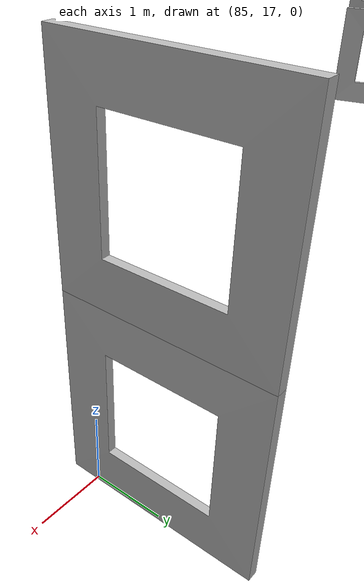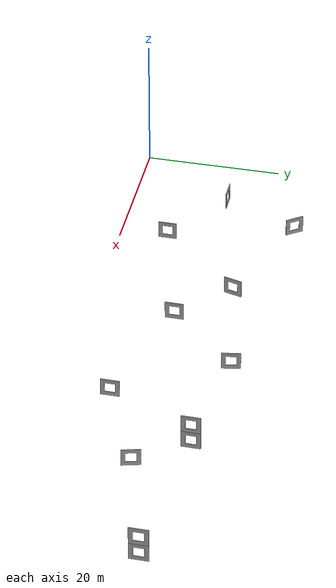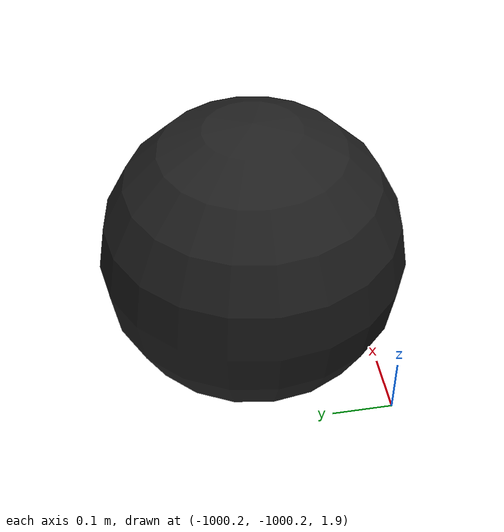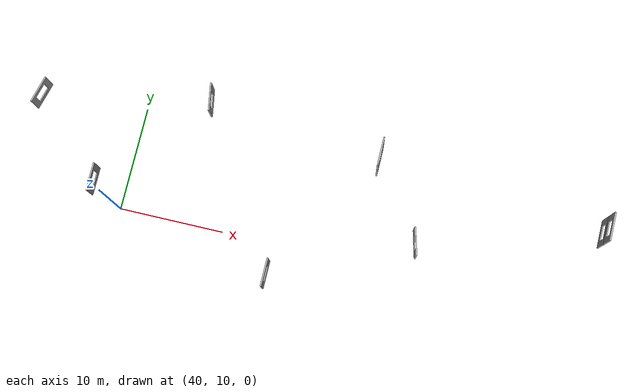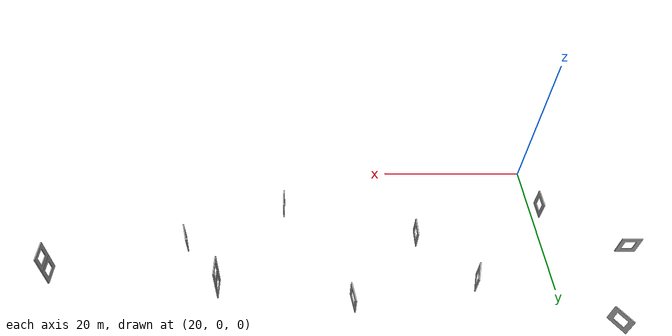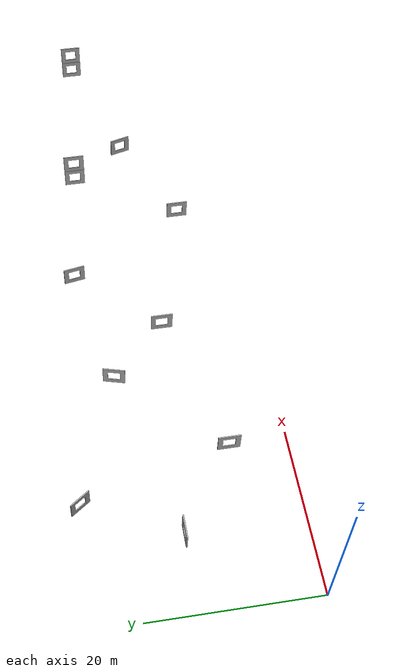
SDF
<sdf version="1.5">
 <world name="default">
  <plugin name="mrs_gazebo_static_transform_republisher_plugin" filename="libMrsGazeboCommonResources_StaticTransformRepublisher.so"/>
  <spherical_coordinates>
   <surface_model>EARTH_WGS84</surface_model>
   <latitude_deg>47.397743</latitude_deg>
   <longitude_deg>8.545594</longitude_deg>
   <elevation>0.0</elevation>
   <heading_deg>0</heading_deg>
  </spherical_coordinates>
  <physics name="default_physics" default="0" type="ode">
   <gravity>0 0 -9.8066</gravity>
   <ode>
    <solver>
     <type>quick</type>
     <iters>10</iters>
     <sor>1.3</sor>
     <use_dynamic_moi_rescaling>0</use_dynamic_moi_rescaling>
    </solver>
    <constraints>
     <cfm>0</cfm>
     <erp>0.2</erp>
     <contact_max_correcting_vel>250</contact_max_correcting_vel>
     <contact_surface_layer>0.004</contact_surface_layer>
    </constraints>
   </ode>
   <max_step_size>0.004</max_step_size>
   <real_time_factor>1</real_time_factor>
   <real_time_update_rate>250</real_time_update_rate>
   <magnetic_field>6.0e-06 2.3e-05 -4.2e-05</magnetic_field>
  </physics>
  <scene><shadows>false</shadows></scene>
  <light name="sun" type="directional">
   <pose>0 0 10 0.5 -0.4 0</pose>
   <diffuse>1 1 1 1</diffuse>
   <specular>0.6 0.6 0.6 1</specular>
   <direction>0.1 0.1 -0.9</direction>
   <attenuation>
    <range>20</range>
    <constant>0.5</constant>
    <linear>0.01</linear>
    <quadratic>0.001</quadratic>
   </attenuation>
  </light>
  <model name="ground_plane">
   <static>true</static>
   <link name="link">
    <collision name="collision">
     <geometry><plane><normal>0 0 1</normal><size>250 250</size></plane></geometry>
     <surface><friction><ode><mu>1</mu><mu2>1</mu2></ode></friction></surface>
    </collision>
   </link>
  </model>
  <model name="the_void">
   <static>1</static>
   <link name="link">
    <pose>0 0 0.1 0 -0 0</pose>
    <visual name="the_void">
     <pose>0 0 2 0 -0 0</pose>
     <geometry><sphere><radius>0.25</radius></sphere></geometry>
     <material>
      <script><uri>file://media/materials/scripts/Gazebo.material</uri><name>Gazebo/Black</name></script>
     </material>
    </visual>
   </link>
   <pose>-1000 -1000 0 0 0 0</pose>
  </model>
  <plugin name="mrs_gazebo_rviz_cam_synchronizer" filename="libMrsGazeboCommonResources_RvizCameraSynchronizer.so">
   <target_frame_id>gazebo_user_camera</target_frame_id>
   <world_origin_frame_id>uav1/gps_origin</world_origin_frame_id>
   <frame_to_follow>uav1</frame_to_follow>
  </plugin>
  <include><uri>model://gate</uri><pose>14.0 25.0 1.4 0 0 2.18</pose><name>gate1</name></include>
  <include><uri>model://gate</uri><pose>30.0 19.0 1.4 0 0 1.31</pose><name>gate2</name></include>
  <include><uri>model://gate</uri><pose>46.0 22.0 1.4 0 0 1.74</pose><name>gate3</name></include>
  <include><uri>model://gate</uri><pose>63.0 20.0 4.1 0 0 1.57</pose><name>gate4top</name></include>
  <include><uri>model://gate</uri><pose>63.0 20.0 1.4 0 0 1.57</pose><name>gate4bottom</name></include>
  <include><uri>model://gate</uri><pose>85.0 18.0 4.1 0 0 1.57</pose><name>gate5top</name></include>
  <include><uri>model://gate</uri><pose>85.0 18.0 1.4 0 0 1.57</pose><name>gate5bottom</name></include>
  <include><uri>model://gate</uri><pose>68.0 13.0 1.4 0 0 1.83</pose><name>gate6</name></include>
  <include><uri>model://gate</uri><pose>55.0 7.0 1.4 0 0 1.57</pose><name>gate7</name></include>
  <include><uri>model://gate</uri><pose>37.0 12.0 1.4 0 0 1.57</pose><name>gate8</name></include>
  <include><uri>model://gate</uri><pose>19.0 7.0 1.4 0 0 1.57</pose><name>gate9</name></include>
  <include><uri>model://gate</uri><pose>9.0 14.0 1.4 0 0 0.0</pose><name>gate10</name></include>
 </world>
</sdf>

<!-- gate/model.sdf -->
<sdf version="1.6">
  <model name="gate">
    <static>true</static>
    <link name="link">
      <visual name="visual">
        <geometry>
          <mesh>
            <scale>1 1 1</scale>
            <uri>model://gate/meshes/gate.dae</uri>
          </mesh>
        </geometry>
      </visual>
    </link>
  </model>
</sdf>
